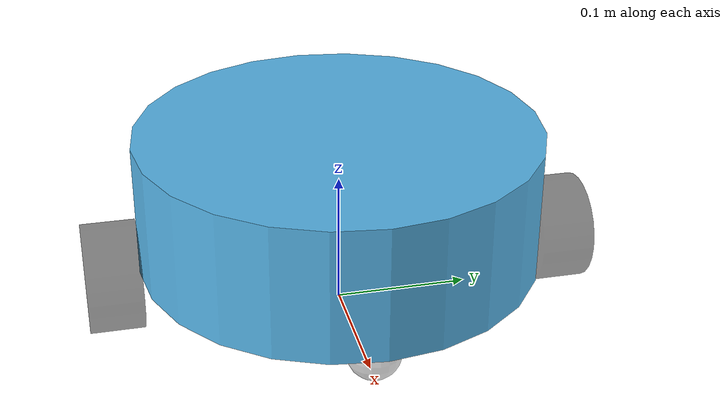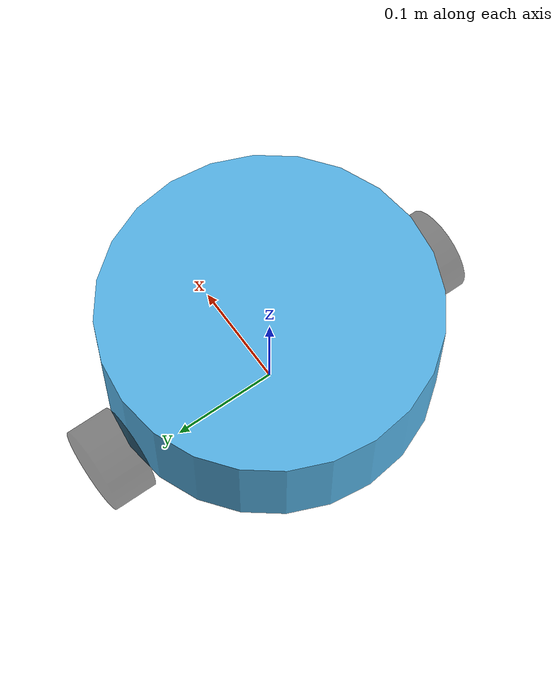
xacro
<?xml version="1.0"?>
<robot name="diff_drive_robot" xmlns:xacro="http://www.ros.org/wiki/xacro">

    <xacro:arg name="namespace" default="robot_0"/>
    <xacro:property name="base_radius" value="0.15"/>
    <xacro:property name="base_length" value="0.10"/>
    <xacro:property name="wheel_radius" value="0.04"/>
    <xacro:property name="wheel_length" value="0.04"/>
    <xacro:property name="wheel_mass" value="0.05"/>
    <xacro:property name="caster_radius" value="${wheel_radius / 2}"/>
    <xacro:property name="caster_mass" value="0.03"/>

    <xacro:macro name="cylinder_inertia" params="mass radius length">
        <inertia
            ixx="${mass * (3 * radius * radius + length * length) / 12}"
            ixy="0.0"
            ixz="0.0"
            iyy="${mass * (3 * radius * radius + length * length) / 12}"
            iyz="0.0"
            izz="${mass * radius * radius / 2}"
        />
    </xacro:macro>

    <xacro:macro name="sphere_inertia" params="mass radius">
        <inertia ixx="${2 * mass * radius * radius / 3}"
            ixy="0.0"
            ixz="0.0"
            iyy="${2 * mass * radius * radius / 3}"
            iyz="0.0"
            izz="${2 * mass * radius * radius / 3}"
        />
    </xacro:macro>

    <!-- base_link -->
    <link name="base_footprint"/>

    <link name="base_link">
        <visual>
            <origin xyz="0.0 0.0 0.0" rpy="0.0 0.0 0.0"/>
            <geometry>
                <cylinder radius="${base_radius}" length="${base_length}"/>
            </geometry>
        </visual>
        <collision>
            <origin xyz="0.0 0.0 0.0" rpy="0.0 0.0 0.0"/>
            <geometry>
                <cylinder radius="${base_radius}" length="${base_length}"/>
            </geometry>
        </collision>
        <inertial>
            <mass value="1.0"/>
            <xacro:cylinder_inertia mass="1.0" radius="${base_radius}" length="${base_length}"/>
        </inertial>
    </link>

    <joint name="base_joint" type="fixed">
        <parent link="base_footprint"/>
        <child link="base_link"/>
        <origin xyz="0.0 0.0 ${wheel_radius + base_length / 2}"/>
    </joint>

    <!-- wheel_link -->
    <link name="left_wheel_link">
        <visual>
            <origin xyz="0.0 0.0 0.0" rpy="${pi/2} 0.0 0.0"/>
            <geometry>
                <cylinder radius="${wheel_radius}" length="${wheel_length}"/>
            </geometry>
            <material name="black">
                <color rgba="0.0 0.0 0.0 0.5"/>
            </material>
        </visual>
        <collision>
            <origin xyz="0.0 0.0 0.0" rpy="${pi/2} 0.0 0.0"/>
            <geometry>
                <cylinder radius="${wheel_radius}" length="${wheel_length}"/>
            </geometry>
        </collision>
        <inertial>
            <mass value="${wheel_mass}"/>
            <xacro:cylinder_inertia mass="${wheel_mass}" radius="${wheel_radius}" length="${wheel_length}"/>
        </inertial>
    </link>

    <joint name="left_wheel_joint" type="continuous">
        <parent link="base_link"/>
        <child link="left_wheel_link"/>
        <origin xyz="0.0 ${base_radius + wheel_length / 2} ${-base_length / 2}"/>
        <axis xyz="0.0 1.0 0.0"/>
    </joint>

    <gazebo reference="left_wheel_link">
        <material>Gazebo/Black</material>
    </gazebo>

    <link name="right_wheel_link">
        <visual>
            <origin xyz="0.0 0.0 0.0" rpy="${pi/2} 0.0 0.0"/>
            <geometry>
                <cylinder radius="${wheel_radius}" length="${wheel_length}"/>
            </geometry>
            <material name="black">
                <color rgba="0.0 0.0 0.0 0.5"/>
            </material>
        </visual>
        <collision>
            <origin xyz="0.0 0.0 0.0" rpy="${pi/2} 0.0 0.0"/>
            <geometry>
                <cylinder radius="${wheel_radius}" length="${wheel_length}"/>
            </geometry>
        </collision>
        <inertial>
            <mass value="${wheel_mass}"/>
            <xacro:cylinder_inertia mass="${wheel_mass}" radius="${wheel_radius}" length="${wheel_length}"/>
        </inertial>
    </link>

    <joint name="right_wheel_joint" type="continuous">
        <parent link="base_link"/>
        <child link="right_wheel_link"/>
        <origin xyz="0.0 ${-base_radius - wheel_length / 2} ${-base_length / 2}"/>
        <axis xyz="0.0 1.0 0.0"/>
    </joint>

    <gazebo reference="right_wheel_link">
        <material>Gazebo/Black</material>
    </gazebo>

    <!-- caster_link -->
    <link name="front_caster_link">
        <visual>
            <origin xyz="0.0 0.0 0.0" rpy="0.0 0.0 0.0"/>
            <geometry>
                <sphere radius="${caster_radius}"/>
            </geometry>
            <material name="gray">
                <color rgba="0.5 0.5 0.5 0.5"/>
            </material>
        </visual>
        <collision>
            <origin xyz="0.0 0.0 0.0" rpy="0.0 0.0 0.0"/>
            <geometry>
                <sphere radius="${caster_radius}"/>
            </geometry>
        </collision>
        <inertial>
            <mass value="${caster_mass}"/>
            <xacro:sphere_inertia mass="${caster_mass}" radius="${caster_radius}"/>
        </inertial>
    </link>

    <joint name="front_caster_joint" type="fixed">
        <parent link="base_link"/>
        <child link="front_caster_link"/>
        <origin xyz="0.11 0.0 ${-base_length / 2 - caster_radius + 0.001}"/>
    </joint>

    <gazebo reference="front_caster_link">
        <material>Gazebo/Gray</material>
        <mu1 value="0.0"/>
        <mu2 value="0.0"/>
        <kp value="1000000.0" />
        <kd value="10.0" />
    </gazebo>

    <link name="back_caster_link">
        <visual>
            <origin xyz="0.0 0.0 0.0" rpy="0.0 0.0 0.0"/>
            <geometry>
                <sphere radius="${caster_radius}"/>
            </geometry>
            <material name="gray">
                <color rgba="0.5 0.5 0.5 0.5"/>
            </material>
        </visual>
        <collision>
            <origin xyz="0.0 0.0 0.0" rpy="0.0 0.0 0.0"/>
            <geometry>
                <sphere radius="${caster_radius}"/>
            </geometry>
        </collision>
        <inertial>
            <mass value="${caster_mass}"/>
            <xacro:sphere_inertia mass="${caster_mass}" radius="${caster_radius}"/>
        </inertial>
    </link>

    <joint name="back_caster_joint" type="fixed">
        <parent link="base_link"/>
        <child link="back_caster_link"/>
        <origin xyz="-0.11 0.0 ${-base_length / 2 - caster_radius + 0.001}"/>
    </joint>

    <gazebo reference="back_caster_link">
        <material>Gazebo/Gray</material>
        <mu1 value="0.0"/>
        <mu2 value="0.0"/>
        <kp value="1000000.0" />
        <kd value="10.0" />
    </gazebo>

    <!-- plugin -->
    <gazebo>
        <plugin name="diff_drive" filename="libgazebo_ros_diff_drive.so">
            <ros>
                <namespace>/$(arg namespace)</namespace>
                <remapping>cmd_vel:=cmd_vel</remapping>
                <remapping>odom:=odom</remapping>
            </ros>
            <update_rate>30</update_rate>
            <left_joint>left_wheel_joint</left_joint>
            <right_joint>right_wheel_joint</right_joint>
            <!-- kinematics -->
            <wheel_separation>${base_radius * 2 + wheel_length}</wheel_separation>
            <wheel_diameter>${wheel_radius * 2}</wheel_diameter>
            <!-- limits -->
            <max_wheel_torque>200</max_wheel_torque>
            <max_wheel_acceleration>10.0</max_wheel_acceleration>
            <!-- output -->
            <publish_odom>true</publish_odom>
            <publish_odom_tf>false</publish_odom_tf>
            <publish_wheel_tf>false</publish_wheel_tf>
            <odometry_frame>odom</odometry_frame>
            <robot_base_frame>base_footprint</robot_base_frame>
        </plugin>
    </gazebo>
</robot>
